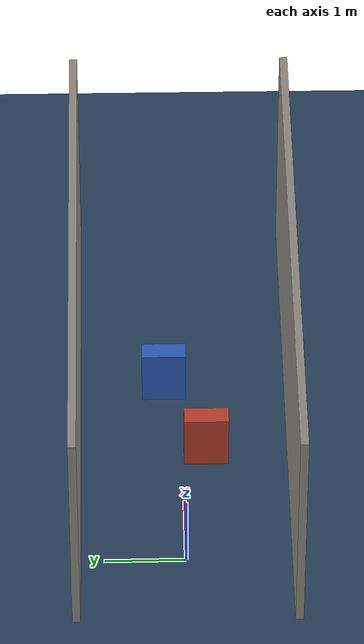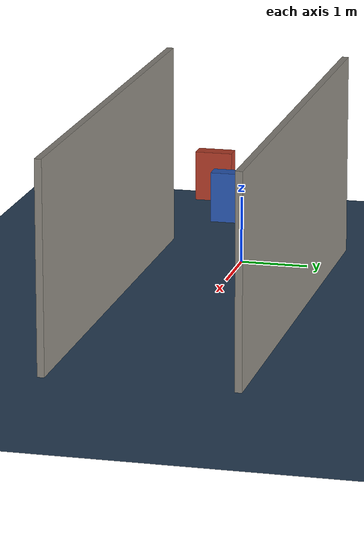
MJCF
<mujoco model="TinyRacer slalom obstacles">
  <option integrator="RK4" density="1.225" viscosity="1.8e-5" timestep="0.001"/>
  <compiler inertiafromgeom="false" autolimits="true"/>
  <statistic center="1.3 0 1.2" extent="3.5"/>
  <visual><headlight diffuse="0.55 0.55 0.55" ambient="0.35 0.35 0.35" specular="0 0 0"/><global azimuth="0" elevation="-20" ellipsoidinertia="true"/></visual>
  <asset>
    <texture type="skybox" builtin="gradient" rgb1="0.52 0.60 0.66" rgb2="0.18 0.22 0.25" width="512" height="3072"/>
    <texture type="2d" name="groundplane" builtin="checker" mark="edge" rgb1="0.2 0.3 0.4" rgb2="0.1 0.2 0.3" markrgb="0.8 0.8 0.8" width="512" height="512"/>
    <material name="groundplane" texture="groundplane" texuniform="true" texrepeat="2 2" reflectance="0.2"/>
    <texture type="2d" name="walltexture" builtin="checker" rgb1="0.62 0.60 0.56" rgb2="0.48 0.47 0.44" width="256" height="256"/>
    <material name="wallmaterial" texture="walltexture" texuniform="true" texrepeat="8 2" reflectance="0.05"/>
  </asset>
  <worldbody>
    <light pos="0 0 4" dir="0 0 -1" directional="true"/>
    <geom name="floor" size="0 0 0.05" type="plane" material="groundplane"/>
    <geom name="wall_left" type="box" pos="2.5 1.35 1.5" size="3.5 0.05 1.5" material="wallmaterial" contype="1" conaffinity="1"/>
    <geom name="wall_right" type="box" pos="2.5 -1.35 1.5" size="3.5 0.05 1.5" material="wallmaterial" contype="1" conaffinity="1"/>
    <geom name="left_box" type="box" pos="0.65 -0.25 1.5" size="0.12 0.27 0.36" rgba="0.72 0.24 0.16 1" contype="1" conaffinity="1"/>
    <geom name="right_box" type="box" pos="1.78 0.25 1.5" size="0.12 0.27 0.36" rgba="0.16 0.35 0.72 1" contype="1" conaffinity="1"/>
  </worldbody>
</mujoco>
